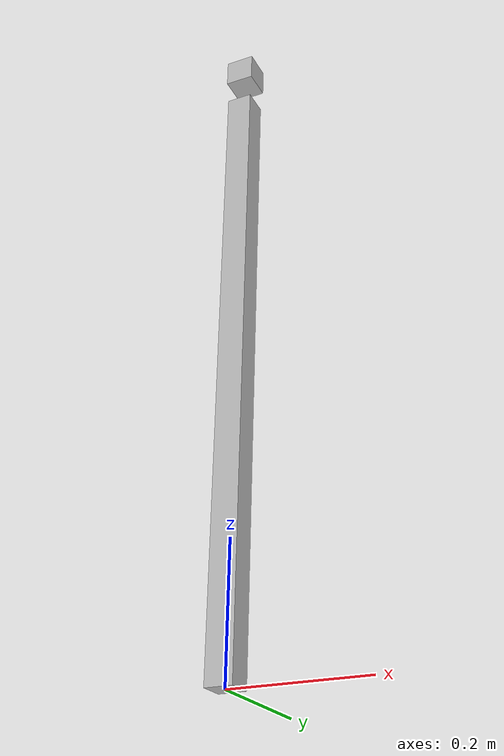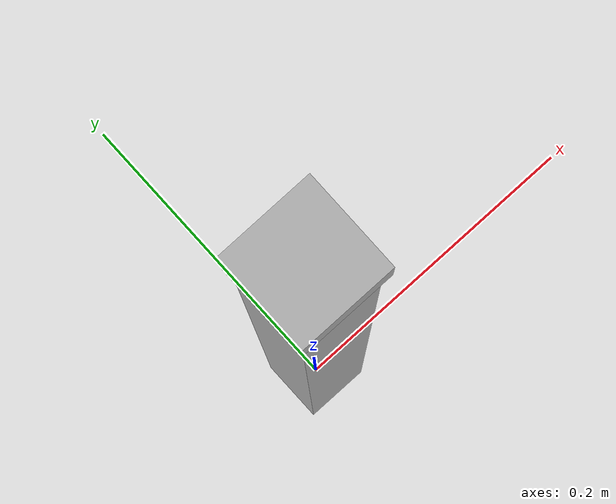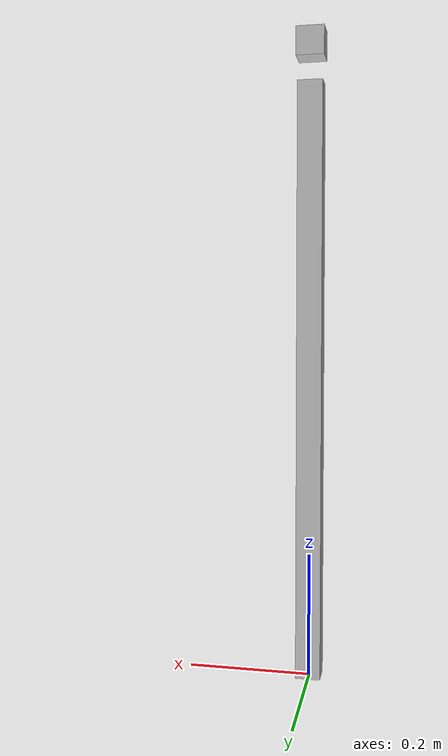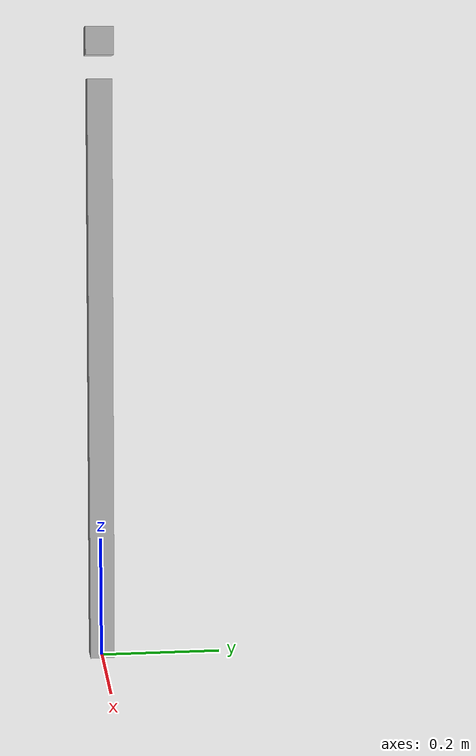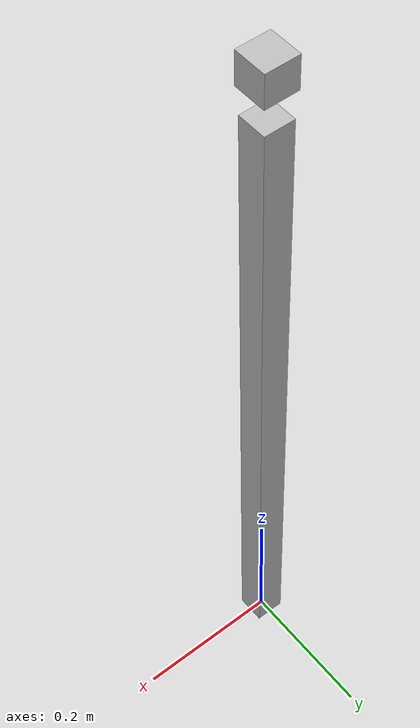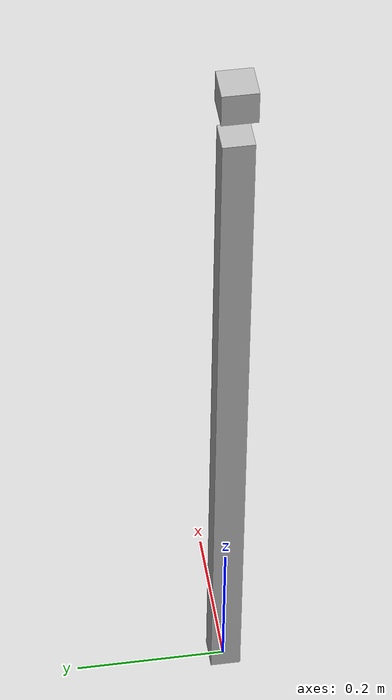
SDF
<?xml version="1.0" ?>
<sdf version="1.4">
	<model name="camera_stand">
		<static>true</static>
		<link name="stand">
			<pose>0 0 0.48 0 0 0</pose>
			<collision name="pole">
				<pose>0 0 0 0 0 0</pose>
				<geometry>
					<box>
						<size>0.04 0.04 0.96</size>
					</box>
				</geometry>
			</collision>
			<visual name="visual">
				<geometry>
					<box>
						<size>0.04 0.04 0.96</size>
					</box>
				</geometry>
			</visual>
		</link>

		<link name="depth_camera">
			<pose>0 0 1.02 0.0 1.57 0.0</pose>
			<collision name="collision">
				<geometry>
					<box>
						<size>0.045 0.045 0.045</size>
					</box>
				</geometry>
			</collision>
			<visual name="visual">
				<geometry>
					<box>
						<size>0.045 0.045 0.045</size>
					</box>
				</geometry>
			</visual>
			<sensor name="DepCamera" type="depth">
				<camera>
					<horizontal_fov>1.5</horizontal_fov>
					<image>
						<width>320</width>
						<height>320</height>
					</image>
					<clip>
						<near>0.01</near>
						<far>1.4</far>
					</clip>
				</camera>
				<always_on>true</always_on>
				<update_rate>200</update_rate>
				<visualize>true</visualize>
				<plugin name='depthCamera' filename='libgazebo_ros_depth_camera.so'>
					<robotNamespace>camera_stand</robotNamespace>
					<focalLength>171.748184</focalLength>
					<alwaysOn>true</alwaysOn>
					<updateRate>30</updateRate>
					<imageTopicName>/DepCamera/image_raw</imageTopicName>
					<depthImageTopicName>/DepCamera/depth/image_raw</depthImageTopicName>
					<cameraInfoTopicName>/DepCamera/depth/camera_info</cameraInfoTopicName>
					<depthImageInfoTopicName>/DepCamera/depth/camera_info</depthImageInfoTopicName>
					<depthImageCameraInfoTopicName>/DepCamera/depth_image_camera_info</depthImageCameraInfoTopicName>
					<pointCloudTopicName>/DepCamera/depth/points</pointCloudTopicName>
					<cameraName>DepCamera</cameraName>
					<frameName>camera_frame</frameName>
				</plugin>
			</sensor>
		</link>

		<joint name="fixed_joint" type="revolute">
			<pose>0 0 0.99 0 0 0</pose>
			<child>depth_camera</child>
			<parent>stand</parent>
			<axis>
				<limit>
					<lower>0</lower>
					<upper>0</upper>
				</limit>
				<xyz>0 1 0</xyz>
			</axis>
		</joint>

	</model>
</sdf>
